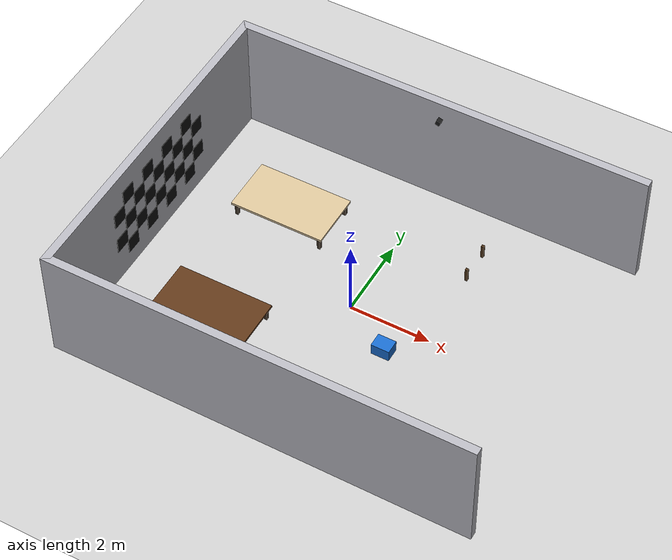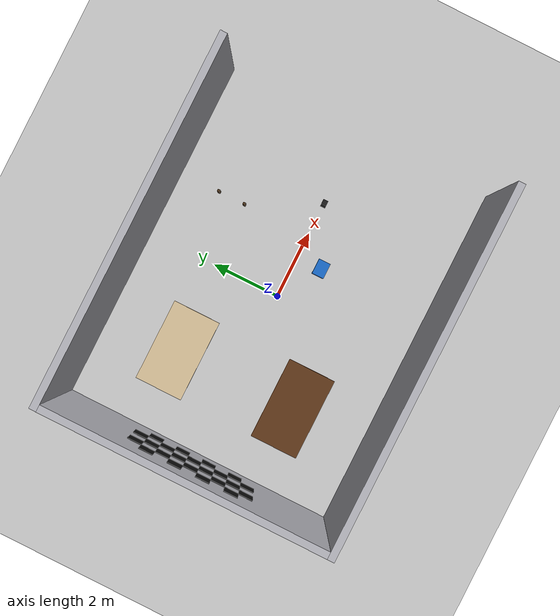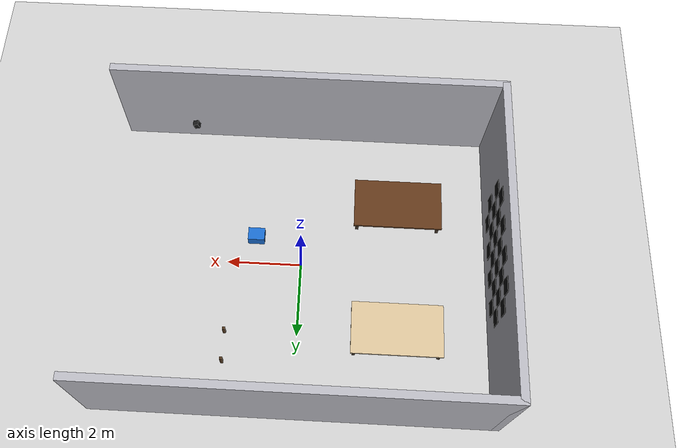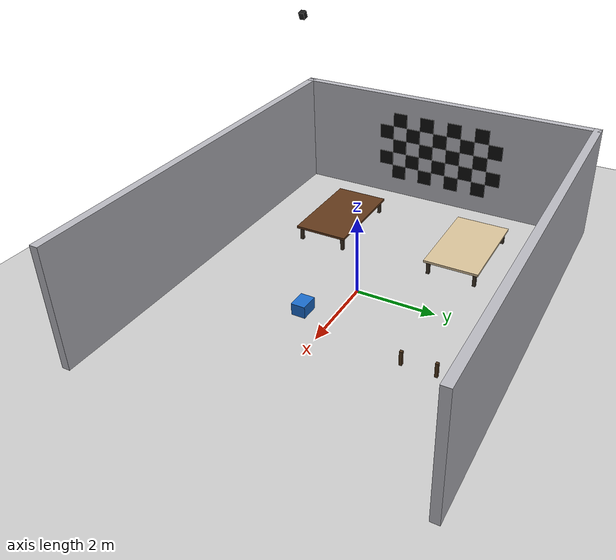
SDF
<sdf version="1.6">
 <world name="collab_workshop">
  <include><uri>model://ground_plane</uri></include>
  <include><uri>model://sun</uri></include>
  <model name="wall_north">
   <pose>0 4.1 1.5 0 0 0</pose>
   <static>true</static>
   <link name="link">
    <visual name="visual">
     <geometry><box><size>10.4 0.2 3.0</size></box></geometry>
     <material><ambient>0.72 0.72 0.75 1</ambient><diffuse>0.72 0.72 0.75 1</diffuse></material>
    </visual>
    <collision name="collision"><geometry><box><size>10.4 0.2 3.0</size></box></geometry></collision>
   </link>
  </model>
  <model name="wall_south">
   <pose>0 -4.1 1.5 0 0 0</pose>
   <static>true</static>
   <link name="link">
    <visual name="visual">
     <geometry><box><size>10.4 0.2 3.0</size></box></geometry>
     <material><ambient>0.72 0.72 0.75 1</ambient><diffuse>0.72 0.72 0.75 1</diffuse></material>
    </visual>
    <collision name="collision"><geometry><box><size>10.4 0.2 3.0</size></box></geometry></collision>
   </link>
  </model>
  <model name="wall_west">
   <pose>-5.1 0 1.5 0 0 0</pose>
   <static>true</static>
   <link name="link">
    <visual name="visual">
     <geometry><box><size>0.2 8.4 3.0</size></box></geometry>
     <material><ambient>0.72 0.72 0.75 1</ambient><diffuse>0.72 0.72 0.75 1</diffuse></material>
    </visual>
    <collision name="collision"><geometry><box><size>0.2 8.4 3.0</size></box></geometry></collision>
   </link>
  </model>
  <model name="calib_tile_0_1">
   <pose>-4.98 -1.2 0.7 0 0 0.0</pose>
   <static>true</static>
   <link name="link">
    <visual name="visual">
     <geometry><box><size>0.02 0.4 0.4</size></box></geometry>
     <material><ambient>0.05 0.05 0.05 1</ambient><diffuse>0.05 0.05 0.05 1</diffuse></material>
    </visual>
   </link>
  </model>
  <model name="calib_tile_0_3">
   <pose>-4.98 -0.39999999999999986 0.7 0 0 0.0</pose>
   <static>true</static>
   <link name="link">
    <visual name="visual">
     <geometry><box><size>0.02 0.4 0.4</size></box></geometry>
     <material><ambient>0.05 0.05 0.05 1</ambient><diffuse>0.05 0.05 0.05 1</diffuse></material>
    </visual>
   </link>
  </model>
  <model name="calib_tile_0_5">
   <pose>-4.98 0.39999999999999997 0.7 0 0 0.0</pose>
   <static>true</static>
   <link name="link">
    <visual name="visual">
     <geometry><box><size>0.02 0.4 0.4</size></box></geometry>
     <material><ambient>0.05 0.05 0.05 1</ambient><diffuse>0.05 0.05 0.05 1</diffuse></material>
    </visual>
   </link>
  </model>
  <model name="calib_tile_0_7">
   <pose>-4.98 1.2000000000000002 0.7 0 0 0.0</pose>
   <static>true</static>
   <link name="link">
    <visual name="visual">
     <geometry><box><size>0.02 0.4 0.4</size></box></geometry>
     <material><ambient>0.05 0.05 0.05 1</ambient><diffuse>0.05 0.05 0.05 1</diffuse></material>
    </visual>
   </link>
  </model>
  <model name="calib_tile_1_0">
   <pose>-4.98 -1.6 1.1 0 0 0.0</pose>
   <static>true</static>
   <link name="link">
    <visual name="visual">
     <geometry><box><size>0.02 0.4 0.4</size></box></geometry>
     <material><ambient>0.05 0.05 0.05 1</ambient><diffuse>0.05 0.05 0.05 1</diffuse></material>
    </visual>
   </link>
  </model>
  <model name="calib_tile_1_2">
   <pose>-4.98 -0.8 1.1 0 0 0.0</pose>
   <static>true</static>
   <link name="link">
    <visual name="visual">
     <geometry><box><size>0.02 0.4 0.4</size></box></geometry>
     <material><ambient>0.05 0.05 0.05 1</ambient><diffuse>0.05 0.05 0.05 1</diffuse></material>
    </visual>
   </link>
  </model>
  <model name="calib_tile_1_4">
   <pose>-4.98 5.551115123125783e-17 1.1 0 0 0.0</pose>
   <static>true</static>
   <link name="link">
    <visual name="visual">
     <geometry><box><size>0.02 0.4 0.4</size></box></geometry>
     <material><ambient>0.05 0.05 0.05 1</ambient><diffuse>0.05 0.05 0.05 1</diffuse></material>
    </visual>
   </link>
  </model>
  <model name="calib_tile_1_6">
   <pose>-4.98 0.8000000000000003 1.1 0 0 0.0</pose>
   <static>true</static>
   <link name="link">
    <visual name="visual">
     <geometry><box><size>0.02 0.4 0.4</size></box></geometry>
     <material><ambient>0.05 0.05 0.05 1</ambient><diffuse>0.05 0.05 0.05 1</diffuse></material>
    </visual>
   </link>
  </model>
  <model name="calib_tile_1_8">
   <pose>-4.98 1.6 1.1 0 0 0.0</pose>
   <static>true</static>
   <link name="link">
    <visual name="visual">
     <geometry><box><size>0.02 0.4 0.4</size></box></geometry>
     <material><ambient>0.05 0.05 0.05 1</ambient><diffuse>0.05 0.05 0.05 1</diffuse></material>
    </visual>
   </link>
  </model>
  <model name="calib_tile_2_1">
   <pose>-4.98 -1.2 1.5 0 0 0.0</pose>
   <static>true</static>
   <link name="link">
    <visual name="visual">
     <geometry><box><size>0.02 0.4 0.4</size></box></geometry>
     <material><ambient>0.05 0.05 0.05 1</ambient><diffuse>0.05 0.05 0.05 1</diffuse></material>
    </visual>
   </link>
  </model>
  <model name="calib_tile_2_3">
   <pose>-4.98 -0.39999999999999986 1.5 0 0 0.0</pose>
   <static>true</static>
   <link name="link">
    <visual name="visual">
     <geometry><box><size>0.02 0.4 0.4</size></box></geometry>
     <material><ambient>0.05 0.05 0.05 1</ambient><diffuse>0.05 0.05 0.05 1</diffuse></material>
    </visual>
   </link>
  </model>
  <model name="calib_tile_2_5">
   <pose>-4.98 0.39999999999999997 1.5 0 0 0.0</pose>
   <static>true</static>
   <link name="link">
    <visual name="visual">
     <geometry><box><size>0.02 0.4 0.4</size></box></geometry>
     <material><ambient>0.05 0.05 0.05 1</ambient><diffuse>0.05 0.05 0.05 1</diffuse></material>
    </visual>
   </link>
  </model>
  <model name="calib_tile_2_7">
   <pose>-4.98 1.2000000000000002 1.5 0 0 0.0</pose>
   <static>true</static>
   <link name="link">
    <visual name="visual">
     <geometry><box><size>0.02 0.4 0.4</size></box></geometry>
     <material><ambient>0.05 0.05 0.05 1</ambient><diffuse>0.05 0.05 0.05 1</diffuse></material>
    </visual>
   </link>
  </model>
  <model name="calib_tile_3_0">
   <pose>-4.98 -1.6 1.9000000000000001 0 0 0.0</pose>
   <static>true</static>
   <link name="link">
    <visual name="visual">
     <geometry><box><size>0.02 0.4 0.4</size></box></geometry>
     <material><ambient>0.05 0.05 0.05 1</ambient><diffuse>0.05 0.05 0.05 1</diffuse></material>
    </visual>
   </link>
  </model>
  <model name="calib_tile_3_2">
   <pose>-4.98 -0.8 1.9000000000000001 0 0 0.0</pose>
   <static>true</static>
   <link name="link">
    <visual name="visual">
     <geometry><box><size>0.02 0.4 0.4</size></box></geometry>
     <material><ambient>0.05 0.05 0.05 1</ambient><diffuse>0.05 0.05 0.05 1</diffuse></material>
    </visual>
   </link>
  </model>
  <model name="calib_tile_3_4">
   <pose>-4.98 5.551115123125783e-17 1.9000000000000001 0 0 0.0</pose>
   <static>true</static>
   <link name="link">
    <visual name="visual">
     <geometry><box><size>0.02 0.4 0.4</size></box></geometry>
     <material><ambient>0.05 0.05 0.05 1</ambient><diffuse>0.05 0.05 0.05 1</diffuse></material>
    </visual>
   </link>
  </model>
  <model name="calib_tile_3_6">
   <pose>-4.98 0.8000000000000003 1.9000000000000001 0 0 0.0</pose>
   <static>true</static>
   <link name="link">
    <visual name="visual">
     <geometry><box><size>0.02 0.4 0.4</size></box></geometry>
     <material><ambient>0.05 0.05 0.05 1</ambient><diffuse>0.05 0.05 0.05 1</diffuse></material>
    </visual>
   </link>
  </model>
  <model name="calib_tile_3_8">
   <pose>-4.98 1.6 1.9000000000000001 0 0 0.0</pose>
   <static>true</static>
   <link name="link">
    <visual name="visual">
     <geometry><box><size>0.02 0.4 0.4</size></box></geometry>
     <material><ambient>0.05 0.05 0.05 1</ambient><diffuse>0.05 0.05 0.05 1</diffuse></material>
    </visual>
   </link>
  </model>
  <model name="calib_tile_4_1">
   <pose>-4.98 -1.2 2.3000000000000003 0 0 0.0</pose>
   <static>true</static>
   <link name="link">
    <visual name="visual">
     <geometry><box><size>0.02 0.4 0.4</size></box></geometry>
     <material><ambient>0.05 0.05 0.05 1</ambient><diffuse>0.05 0.05 0.05 1</diffuse></material>
    </visual>
   </link>
  </model>
  <model name="calib_tile_4_3">
   <pose>-4.98 -0.39999999999999986 2.3000000000000003 0 0 0.0</pose>
   <static>true</static>
   <link name="link">
    <visual name="visual">
     <geometry><box><size>0.02 0.4 0.4</size></box></geometry>
     <material><ambient>0.05 0.05 0.05 1</ambient><diffuse>0.05 0.05 0.05 1</diffuse></material>
    </visual>
   </link>
  </model>
  <model name="calib_tile_4_5">
   <pose>-4.98 0.39999999999999997 2.3000000000000003 0 0 0.0</pose>
   <static>true</static>
   <link name="link">
    <visual name="visual">
     <geometry><box><size>0.02 0.4 0.4</size></box></geometry>
     <material><ambient>0.05 0.05 0.05 1</ambient><diffuse>0.05 0.05 0.05 1</diffuse></material>
    </visual>
   </link>
  </model>
  <model name="calib_tile_4_7">
   <pose>-4.98 1.2000000000000002 2.3000000000000003 0 0 0.0</pose>
   <static>true</static>
   <link name="link">
    <visual name="visual">
     <geometry><box><size>0.02 0.4 0.4</size></box></geometry>
     <material><ambient>0.05 0.05 0.05 1</ambient><diffuse>0.05 0.05 0.05 1</diffuse></material>
    </visual>
   </link>
  </model>
  <model name="kuka_kr10_table">
   <pose>-2.6 -1.8 0.375 0 0 0.0</pose>
   <static>true</static>
   <link name="link">
    <visual name="visual">
     <geometry><box><size>2.4 1.4 0.06</size></box></geometry>
     <material><ambient>0.38 0.22 0.1 1</ambient><diffuse>0.38 0.22 0.1 1</diffuse></material>
    </visual>
    <collision name="collision"><geometry><box><size>2.4 1.4 0.06</size></box></geometry></collision>
   </link>
  </model>
  <model name="kuka_kr10_leg_0">
   <pose>-3.7 -2.4 0.1875 0 0 0.0</pose>
   <static>true</static>
   <link name="link">
    <visual name="visual">
     <geometry><box><size>0.08 0.08 0.375</size></box></geometry>
     <material><ambient>0.25 0.2 0.15 1</ambient><diffuse>0.25 0.2 0.15 1</diffuse></material>
    </visual>
    <collision name="collision"><geometry><box><size>0.08 0.08 0.375</size></box></geometry></collision>
   </link>
  </model>
  <model name="kuka_kr10_leg_1">
   <pose>-3.7 -1.2000000000000002 0.1875 0 0 0.0</pose>
   <static>true</static>
   <link name="link">
    <visual name="visual">
     <geometry><box><size>0.08 0.08 0.375</size></box></geometry>
     <material><ambient>0.25 0.2 0.15 1</ambient><diffuse>0.25 0.2 0.15 1</diffuse></material>
    </visual>
    <collision name="collision"><geometry><box><size>0.08 0.08 0.375</size></box></geometry></collision>
   </link>
  </model>
  <model name="kuka_kr10_leg_2">
   <pose>-1.5 -2.4 0.1875 0 0 0.0</pose>
   <static>true</static>
   <link name="link">
    <visual name="visual">
     <geometry><box><size>0.08 0.08 0.375</size></box></geometry>
     <material><ambient>0.25 0.2 0.15 1</ambient><diffuse>0.25 0.2 0.15 1</diffuse></material>
    </visual>
    <collision name="collision"><geometry><box><size>0.08 0.08 0.375</size></box></geometry></collision>
   </link>
  </model>
  <model name="kuka_kr10_leg_3">
   <pose>-1.5 -1.2000000000000002 0.1875 0 0 0.0</pose>
   <static>true</static>
   <link name="link">
    <visual name="visual">
     <geometry><box><size>0.08 0.08 0.375</size></box></geometry>
     <material><ambient>0.25 0.2 0.15 1</ambient><diffuse>0.25 0.2 0.15 1</diffuse></material>
    </visual>
    <collision name="collision"><geometry><box><size>0.08 0.08 0.375</size></box></geometry></collision>
   </link>
  </model>
  <model name="fanuc_m10_table">
   <pose>-2.6 1.8 0.375 0 0 0.0</pose>
   <static>true</static>
   <link name="link">
    <visual name="visual">
     <geometry><box><size>2.4 1.4 0.06</size></box></geometry>
     <material><ambient>0.85 0.76 0.6 1</ambient><diffuse>0.85 0.76 0.6 1</diffuse></material>
    </visual>
    <collision name="collision"><geometry><box><size>2.4 1.4 0.06</size></box></geometry></collision>
   </link>
  </model>
  <model name="fanuc_m10_leg_0">
   <pose>-3.7 1.2000000000000002 0.1875 0 0 0.0</pose>
   <static>true</static>
   <link name="link">
    <visual name="visual">
     <geometry><box><size>0.08 0.08 0.375</size></box></geometry>
     <material><ambient>0.25 0.2 0.15 1</ambient><diffuse>0.25 0.2 0.15 1</diffuse></material>
    </visual>
    <collision name="collision"><geometry><box><size>0.08 0.08 0.375</size></box></geometry></collision>
   </link>
  </model>
  <model name="fanuc_m10_leg_1">
   <pose>-3.7 2.4 0.1875 0 0 0.0</pose>
   <static>true</static>
   <link name="link">
    <visual name="visual">
     <geometry><box><size>0.08 0.08 0.375</size></box></geometry>
     <material><ambient>0.25 0.2 0.15 1</ambient><diffuse>0.25 0.2 0.15 1</diffuse></material>
    </visual>
    <collision name="collision"><geometry><box><size>0.08 0.08 0.375</size></box></geometry></collision>
   </link>
  </model>
  <model name="fanuc_m10_leg_2">
   <pose>-1.5 1.2000000000000002 0.1875 0 0 0.0</pose>
   <static>true</static>
   <link name="link">
    <visual name="visual">
     <geometry><box><size>0.08 0.08 0.375</size></box></geometry>
     <material><ambient>0.25 0.2 0.15 1</ambient><diffuse>0.25 0.2 0.15 1</diffuse></material>
    </visual>
    <collision name="collision"><geometry><box><size>0.08 0.08 0.375</size></box></geometry></collision>
   </link>
  </model>
  <model name="fanuc_m10_leg_3">
   <pose>-1.5 2.4 0.1875 0 0 0.0</pose>
   <static>true</static>
   <link name="link">
    <visual name="visual">
     <geometry><box><size>0.08 0.08 0.375</size></box></geometry>
     <material><ambient>0.25 0.2 0.15 1</ambient><diffuse>0.25 0.2 0.15 1</diffuse></material>
    </visual>
    <collision name="collision"><geometry><box><size>0.08 0.08 0.375</size></box></geometry></collision>
   </link>
  </model>
  <model name="tool_bench_leg_0">
   <pose>1.9000000000000001 2.0 0.18 0 0 0.0</pose>
   <static>true</static>
   <link name="link">
    <visual name="visual">
     <geometry><box><size>0.07 0.07 0.36</size></box></geometry>
     <material><ambient>0.3 0.2 0.1 1</ambient><diffuse>0.3 0.2 0.1 1</diffuse></material>
    </visual>
    <collision name="collision"><geometry><box><size>0.07 0.07 0.36</size></box></geometry></collision>
   </link>
  </model>
  <model name="tool_bench_leg_1">
   <pose>1.9000000000000001 2.8 0.18 0 0 0.0</pose>
   <static>true</static>
   <link name="link">
    <visual name="visual">
     <geometry><box><size>0.07 0.07 0.36</size></box></geometry>
     <material><ambient>0.3 0.2 0.1 1</ambient><diffuse>0.3 0.2 0.1 1</diffuse></material>
    </visual>
    <collision name="collision"><geometry><box><size>0.07 0.07 0.36</size></box></geometry></collision>
   </link>
  </model>
  <model name="tool_shelf_marker">
   <pose>1.25 -0.75 0.15 0 0 0.0</pose>
   <static>true</static>
   <link name="link">
    <visual name="visual">
     <geometry><box><size>0.45 0.35 0.3</size></box></geometry>
     <material><ambient>0.1 0.42 0.8 1</ambient><diffuse>0.1 0.42 0.8 1</diffuse></material>
    </visual>
    <collision name="collision"><geometry><box><size>0.45 0.35 0.3</size></box></geometry></collision>
   </link>
  </model>
  <model name="workshop_overhead_camera">
   <pose>2.0 0 7.0 0 1.25 3.1416</pose>
   <static>true</static>
   <link name="camera_link">
    <visual name="body">
     <geometry><box><size>0.12 0.10 0.10</size></box></geometry>
     <material><ambient>0.1 0.1 0.1 1</ambient><diffuse>0.1 0.1 0.1 1</diffuse></material>
    </visual>
    <sensor name="overhead_camera" type="camera">
     <always_on>true</always_on>
     <visualize>false</visualize>
     <update_rate>10</update_rate>
     <camera>
      <horizontal_fov>1.9</horizontal_fov>
      <image><width>1280</width><height>720</height><format>R8G8B8</format></image>
      <clip><near>0.1</near><far>30.0</far></clip>
     </camera>
     <plugin name="overhead_camera_controller" filename="libgazebo_ros_camera.so">
      <ros><namespace>/</namespace></ros>
      <camera_name>workshop/overhead</camera_name>
      <frame_name>overhead_camera_link</frame_name>
     </plugin>
    </sensor>
   </link>
  </model>
 </world>
</sdf>
